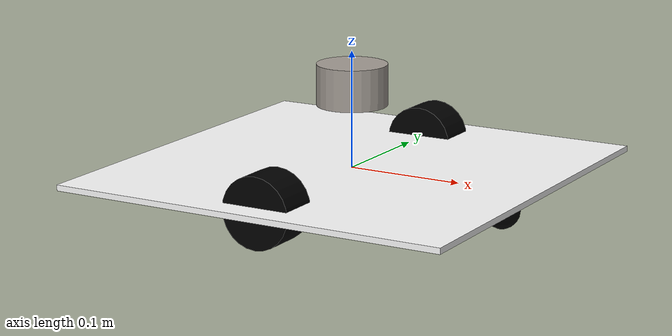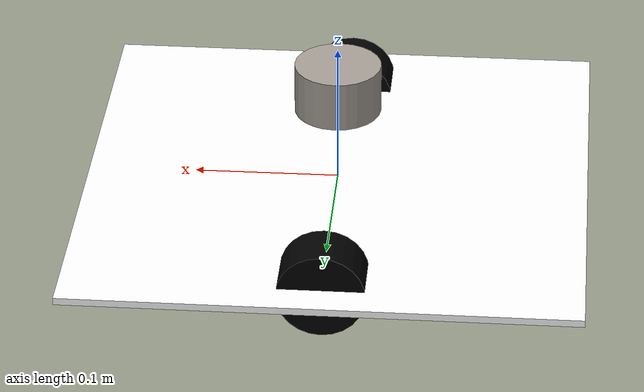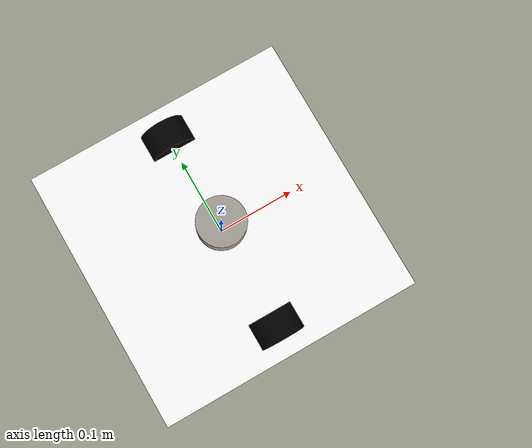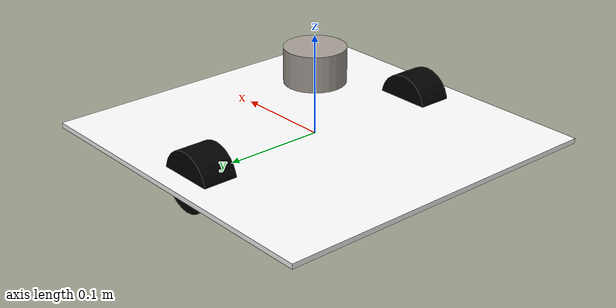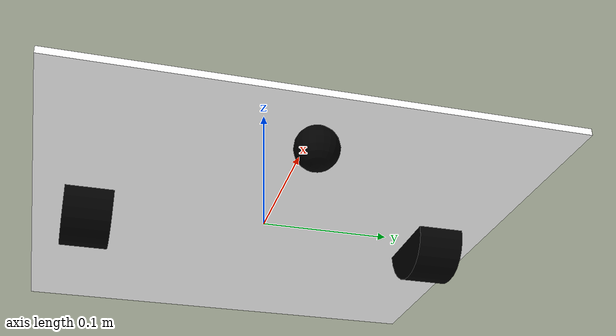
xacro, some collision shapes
<?xml version="1.0"?>
<robot name="RoboMaid" xmlns:xacro="http://ros.org/wiki/xacro">
  <material name="white">
    <color rgba="1 1 1 1"/>
  </material>

  <material name="black">
    <color rgba="0 0 0 1"/>
  </material>

	<!-- Robot-model-->

  <link name="base_link" >
    <visual>
      <geometry>
        <box size="0.35 0.35 0.005"/>
      </geometry>
	<material name="white"/>
    </visual>
    <collision>
      <geometry>
        <box size="0.35 0.35 0.005"/>
      </geometry>
    </collision>
     <inertial>
	<mass value="2"/>
	<inertia ixx="0.0204" ixy="0.0" ixz="0.0" iyy="0.0408" iyz="0.0" izz="0.0204"/>
     </inertial>
  </link>

  <link name="right_wheel_link">
    <visual>
      <geometry>
        <cylinder length="0.035" radius="0.03"/>
      </geometry>
      <origin rpy="1.57075 0 0" xyz="0 0 0"/>
	<material name="black"/>
    </visual>
    <collision>
	<geometry>
        <cylinder length="0.035" radius="0.03"/>
      </geometry>
      <origin rpy="1.57075 0 0" xyz="0 0 0"/>
    </collision>
     <inertial>
	<mass value="0.2"/>
	<inertia ixx="0.0000542" ixy="0.0" ixz="0.0" iyy="0.0000542" iyz="0.0" izz="0.00009"/>
     </inertial>

  </link>
  <link name="left_wheel_link">
    <visual>
      <geometry>
        <cylinder length="0.035" radius="0.03"/>
      </geometry>
      <origin rpy="1.57075 0 0" xyz="0 0 0"/>
	<material name="black"/>
    </visual>
      <collision>
       <geometry>
        <cylinder length="0.035" radius="0.03"/>
      </geometry>
      <origin rpy="1.57075 0 0" xyz="0 0 0"/>
    </collision>
     <inertial>
	<mass value="0.2"/>
	<inertia ixx="0.0000542" ixy="0.0" ixz="0.0" iyy="0.0000542" iyz="0.0" izz="0.00009"/>
     </inertial>
  </link>

  <link name="front_roller">
    <visual>
      <geometry>
        <sphere  radius="0.015"/>
      </geometry>
      <origin  xyz="0 0 -0.015"/>
	<material name="black"/>
    </visual>
     <collision>
	<geometry>
        <sphere  radius="0.015"/>
      </geometry>
      <origin  xyz="0 0 -0.015"/>
      <mu  value="0"/>
     </collision>
     <inertial>
	<mass value="0.5"/> <!--0.12 TODO robot is bumping-->
	<inertia ixx="0.00003" ixy="0.0" ixz="0.0" iyy="0.00003" iyz="0.0" izz="0.00003"/>
     </inertial>

  </link>

<link
    name="laser_frame">
    <inertial>
      <origin
        xyz="-0.00036659 0.00064155 -0.00027052"
        rpy="0 0 0" />
      <mass
        value="0.25482" />
      <inertia
        ixx="8.9194E-05"
        ixy="1.8116E-07"
        ixz="3.6435E-08"
        iyy="0.00018279"
        iyz="2.423E-07"
        izz="0.00011103" />
    </inertial>
    <visual>
      <origin
        xyz="0 0 0"
        rpy="0 0 0" />
      <geometry>
       <mesh
          filename="package://RoboMaid_sim/meshes/ydlidar.dae" />
      </geometry>
      <material
        name="">
        <color
          rgba="0.64706 0.61961 0.58824 1" />
      </material>
    </visual>
    <collision>
      <origin
        xyz="0 0 0"
        rpy="0 0 0" />
      <geometry>
        <cylinder length="0.035" radius="0.03"/>

      </geometry>
    </collision>
  </link>

  <joint name="base_to_left_wheel" type="continuous">
	<parent link="base_link"/>
	<child link="left_wheel_link"/>
        <axis xyz="0 1 0"/>
	<origin xyz="0 0.135 -0.0025"/>
  </joint>

  <joint name="base_to_right_wheel" type="continuous">
	<parent link="base_link"/>
	<child link="right_wheel_link"/>
	<axis xyz="0 1 0"/>
	<origin xyz="0 -0.135 -0.0025"/>
  </joint>

  <joint name="base_to_front_roller" type="fixed">
	<parent link="base_link"/>
	<child link="front_roller"/>
	<origin xyz="0.14 0 -0.0025"/>
  </joint>

  <joint
    name="laser_joint"
    type="fixed">
    <origin
      xyz="0 0 0.07172"
      rpy="0 0 0" />
    <parent
      link="base_link" />
    <child
      link="laser_frame" />
    <axis
      xyz="0  0 1" />
  </joint>

	<!-- adding transmitions for wheels to control their velocity from gazebo -->
<xacro:macro name="wheel-trans" params="wheel_type">

    <gazebo reference="${wheel_type}_wheel_link">
      <mu1 value="200.0"/>
      <mu2 value="100.0"/>
      <kp value="10000000.0" />
      <kd value="1.0" />
      <material>Gazebo/Black</material>
    </gazebo>

    <!-- This block connects the wheel joint to an actuator (motor), which informs both
    simulation and visualization of the robot -->
    <transmission name="${wheel_type}_wheel_trans">
      <type>transmission_interface/SimpleTransmission</type>
      <actuator name="${wheel_type}_wheel_motor">
        <mechanicalReduction>1</mechanicalReduction>
      </actuator>
      <joint name="base_to_${wheel_type}_wheel">
        <hardwareInterface>hardware_interface/VelocityJointInterface</hardwareInterface>
      </joint>
    </transmission>

 </xacro:macro>
 <xacro:wheel-trans wheel_type="left"/>
 <xacro:wheel-trans wheel_type="right"/>

	<!--Gazebo plugin for lidar -->
  <gazebo reference="laser_frame">
    <sensor type="ray" name="ydlidar_X4_sensor">
      <pose>0 0 0.0 0 0 0</pose>
      <visualize>true</visualize>
      <update_rate>9</update_rate>
      <ray>
        <scan>
          <horizontal>
            <samples>720</samples>
            <resolution>1</resolution>
            <min_angle>-3.14159265359</min_angle>
            <max_angle>3.14159265359</max_angle>
          </horizontal>
        </scan>
        <range>
          <min>0.12</min>
          <max>12.0</max>
          <resolution>0.05</resolution>
        </range>
        <noise>
          <type>gaussian</type>

          <mean>0.0</mean>
          <stddev>0.01</stddev>
        </noise>
      </ray>
      <plugin name="gazebo_ros_ydlidarx4_controller" filename="libgazebo_ros_laser.so">
        <topicName>/robomaid/laser/scan</topicName>
        <frameName>laser_frame</frameName>
      </plugin>
    </sensor >
  </gazebo>
	<!--making ros interact with gazebo-->
  <gazebo>
       <plugin name="gazebo_ros_control" filename="libgazebo_ros_control.so">
          <robotNamespace>/</robotNamespace>
      </plugin>
  </gazebo>
</robot>
